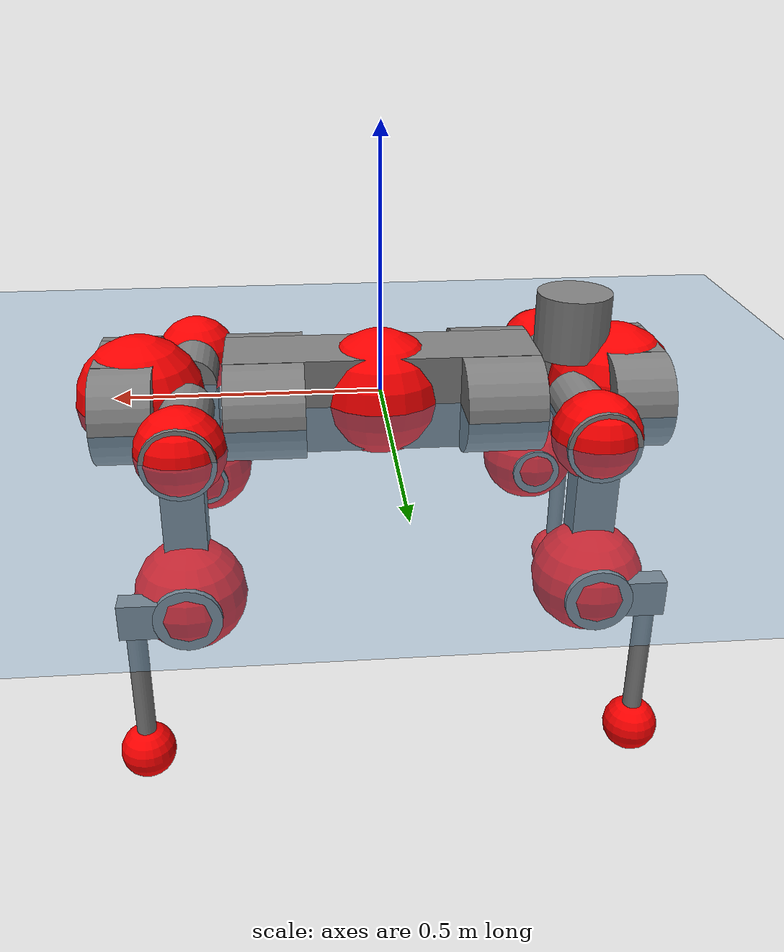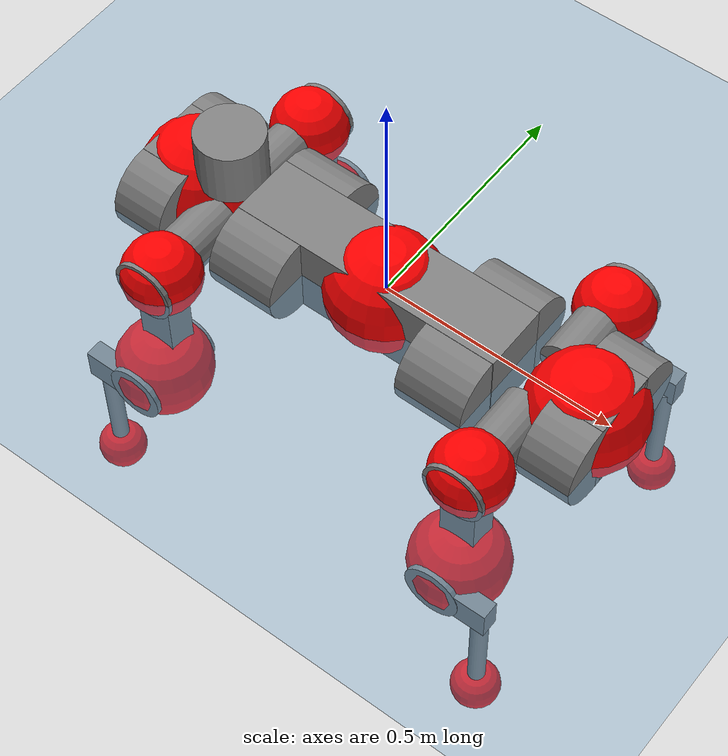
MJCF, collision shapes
<mujoco model="anymal_c">
  <compiler angle="radian" assetdir="assets" balanceinertia="true" inertiafromgeom="false"/>

  <option timestep="0.005" density="1.2" viscosity="2e-05"/>

  <size nkey="1"/>

  <visual>
    <quality shadowsize="8192"/>
    <map shadowclip="0.5"/>
  </visual>

  <default>
    <default class="/">
      <material specular="0" shininess="0.25"/>
      <geom contype="0" conaffinity="0" group="1" solref="-1000 -80"/>
      <site size="0.01 0.005 0.005" group="5"/>
      <general forcelimited="true" forcerange="-80 80" biastype="affine" gainprm="80" biasprm="0 -80 -2"/>
      <default class="anymal_c">
        <joint armature="0.01" damping="0.01" frictionloss="0.1"/>
        <default class="visual">
          <geom type="mesh" group="2"/>
          <default class="visual_zflip"/>
        </default>
        <default class="collision">
          <geom type="cylinder" group="3"/>
          <default class="foot">
            <geom size="0.03 0 0" type="sphere" condim="6" priority="1" friction="0.8 0.02 0.01" solimp="0.015 1 0.03"/>
          </default>
        </default>
      </default>
      <default class="reward_collision_sphere">
        <geom group="5" rgba="1 0 0 1"/>
      </default>
    </default>
  </default>

  <asset>
    <texture type="skybox" colorspace="auto" name="//unnamed_texture_0" builtin="gradient" rgb1="0.95 0.95 0.95" rgb2="0.95 0.95 0.95" width="100" height="600"/>
    <texture type="2d" colorspace="auto" name="texplane" builtin="checker" rgb1="0.345 0.575 0.748" rgb2="0.345 0.575 0.748" markrgb="1 1 1" width="512" height="512"/>
    <texture type="2d" colorspace="linear" name="base" file="base.png"/>
    <texture type="2d" colorspace="linear" name="top_shell" file="top_shell.png"/>
    <texture type="2d" colorspace="linear" name="bottom_shell" file="bottom_shell.png"/>
    <texture type="2d" colorspace="linear" name="remote" file="remote.png"/>
    <texture type="2d" colorspace="linear" name="hatch" file="hatch.png"/>
    <texture type="2d" colorspace="linear" name="handle" file="handle.png"/>
    <texture type="2d" colorspace="linear" name="face" file="face.png"/>
    <texture type="2d" colorspace="linear" name="battery" file="battery.png"/>
    <texture type="2d" colorspace="linear" name="lidar_cage" file="lidar_cage.png"/>
    <texture type="2d" colorspace="linear" name="depth_camera" file="depth_camera.png"/>
    <texture type="2d" colorspace="linear" name="wide_angle_camera" file="wide_angle_camera.png"/>
    <texture type="2d" colorspace="linear" name="lidar" file="lidar.png"/>
    <texture type="2d" colorspace="linear" name="drive" file="drive.png"/>
    <texture type="2d" colorspace="linear" name="hip_l" file="hip_l.png"/>
    <texture type="2d" colorspace="linear" name="shank_l" file="shank_l.png"/>
    <texture type="2d" colorspace="linear" name="foot" file="foot.png"/>
    <texture type="2d" colorspace="linear" name="thigh" file="thigh.png"/>
    <texture type="2d" colorspace="linear" name="shank_r" file="shank_r.png"/>
    <texture type="2d" colorspace="linear" name="hip_r" file="hip_r.png"/>
    <material name="MatPlane" class="/" texture="texplane" texuniform="true" texrepeat="2 2" specular="0.9" shininess="0.5"/>
    <material name="black_plastic" class="/" rgba="0.007 0.007 0.007 1"/>
    <material name="green" class="/" rgba="0.052 0.178 0.033 1"/>
    <material name="red" class="/" rgba="0.178 0.006 0.005 1"/>
    <material name="yellow" class="/" rgba="0.178 0.119 0.006 1"/>
    <material name="lwl" class="/" rgba="0.8 0.8 0.8 1"/>
    <material name="base" class="/" texture="base"/>
    <material name="top_shell" class="/" texture="top_shell"/>
    <material name="bottom_shell" class="/" texture="bottom_shell"/>
    <material name="hip_l" class="/" texture="hip_l"/>
    <material name="thigh" class="/" texture="thigh"/>
    <material name="shank_l" class="/" texture="shank_l"/>
    <material name="foot" class="/" texture="foot"/>
    <material name="hip_r" class="/" texture="hip_r"/>
    <material name="shank" class="/" texture="shank_r"/>
    <material name="hatch" class="/" texture="hatch"/>
    <material name="remote" class="/" texture="remote"/>
    <material name="handle" class="/" texture="handle"/>
    <material name="face" class="/" texture="face"/>
    <material name="depth_camera" class="/" texture="depth_camera"/>
    <material name="wide_angle_camera" class="/" texture="wide_angle_camera"/>
    <material name="battery" class="/" texture="battery"/>
    <material name="lidar_cage" class="/" texture="lidar_cage"/>
    <material name="lidar" class="/" texture="lidar"/>
    <material name="drive" class="/" texture="drive"/>
    <mesh name="base_0" class="/" file="base_0.obj"/>
    <mesh name="base_1" class="/" file="base_1.obj"/>
    <mesh name="base_2" class="/" file="base_2.obj"/>
    <mesh name="base_3" class="/" file="base_3.obj"/>
    <mesh name="base_4" class="/" file="base_4.obj"/>
    <mesh name="base_5" class="/" file="base_5.obj"/>
    <mesh name="top_shell" class="/" file="top_shell.obj"/>
    <mesh name="bottom_shell" class="/" file="bottom_shell.obj"/>
    <mesh name="remote" class="/" file="remote.obj"/>
    <mesh name="handle" class="/" file="handle.obj"/>
    <mesh name="face" class="/" file="face.obj"/>
    <mesh name="wide_angle_camera" class="/" file="wide_angle_camera.obj"/>
    <mesh name="depth_camera" class="/" file="depth_camera.obj"/>
    <mesh name="battery" class="/" file="battery.obj"/>
    <mesh name="lidar_cage" class="/" file="lidar_cage.obj"/>
    <mesh name="lidar" class="/" file="lidar.obj"/>
    <mesh name="drive" class="/" file="drive.obj"/>
    <mesh name="hip_l" class="/" file="hip_l.obj"/>
    <mesh name="thigh" class="/" file="thigh.obj"/>
    <mesh name="shank_l" class="/" file="shank_l.obj"/>
    <mesh name="foot" class="/" file="foot.obj"/>
    <mesh name="hip_r" class="/" file="hip_r.obj"/>
    <mesh name="hatch" class="/" file="hatch.obj"/>
    <mesh name="shank_r" class="/" file="shank_r.obj"/>
  </asset>

  <worldbody>
    <geom name="floor" class="/" size="100 100 0.125" type="plane" group="0" material="MatPlane"/>
    <light name="toplight_shadow" class="/" pos="0 0 5" dir="0.0990148 0.0990148 -0.990148" type="directional" ambient="0.04 0.04 0.04" diffuse="0.55 0.55 0.55" specular="0.12 0.12 0.12"/>
    <light name="toplight_fill" class="/" pos="0 0 5" dir="0.0990148 0.0990148 -0.990148" type="directional" castshadow="false" ambient="0.04 0.04 0.04" diffuse="0.3 0.3 0.3" specular="0.08 0.08 0.08"/>
    <body name="trunk" childclass="anymal_c" pos="2.35689e-05 -2.20723e-05 -0.00110552" quat="1 0.000135962 -0.000336746 -8.17042e-05">
      <inertial pos="0.00214897 -0.00167473 0.0475684" quat="0.500806 0.499118 0.500125 0.499949" mass="19.1507" diaginertia="0.610549 0.845011 0.160224"/>
      <joint name="//unnamed_joint_0" type="free" armature="0" damping="0" frictionloss="0"/>
      <geom name="//unnamed_geom_1" class="visual" material="green" mesh="base_0"/>
      <geom name="//unnamed_geom_2" class="visual" material="yellow" mesh="base_1"/>
      <geom name="//unnamed_geom_3" class="visual" material="red" mesh="base_2"/>
      <geom name="//unnamed_geom_4" class="visual" material="black_plastic" mesh="base_3"/>
      <geom name="//unnamed_geom_5" class="visual" material="lwl" mesh="base_4"/>
      <geom name="//unnamed_geom_6" class="visual" material="base" mesh="base_5"/>
      <geom name="trunk_1" class="collision" size="0.291212 0.0702925 0.090376" type="box"/>
      <geom name="trunk_2" class="collision" size="0.090376 0.0728029" pos="0.217124 0.0748113 0" quat="0.707107 0 0.707107 0"/>
      <geom name="trunk_3" class="collision" size="0.090376 0.0728029" pos="-0.217124 0.0748113 0" quat="0.707107 0 0.707107 0"/>
      <geom name="trunk_4" class="collision" size="0.090376 0.0728029" pos="0.217124 -0.0748113 0" quat="0.707107 0 0.707107 0"/>
      <geom name="trunk_5" class="collision" size="0.090376 0.0728029" pos="-0.217124 -0.0748113 0" quat="0.707107 0 0.707107 0"/>
      <geom name="//unnamed_geom_12" class="visual" material="top_shell" mesh="top_shell"/>
      <geom name="//unnamed_geom_13" class="visual" material="bottom_shell" mesh="bottom_shell"/>
      <geom name="//unnamed_geom_14" class="visual" material="remote" mesh="remote"/>
      <geom name="//unnamed_geom_15" class="visual" material="handle" mesh="handle"/>
      <geom name="//unnamed_geom_16" class="visual" pos="0.413784 0 0" quat="1 0 0 0" material="face" mesh="face"/>
      <geom name="trunk_6" class="collision" size="0.0552298 0.0702925 0.090376" pos="0.468689 0 0" type="box"/>
      <geom name="//unnamed_geom_18" class="collision" size="0.090376 0.0552298" pos="0.468689 0.0748113 0" quat="0.707107 0 0.707107 0"/>
      <geom name="//unnamed_geom_19" class="collision" size="0.090376 0.0552298" pos="0.468689 -0.0748113 0" quat="0.707107 0 0.707107 0"/>
      <geom name="//unnamed_geom_20" class="visual" pos="0.46085 0 -0.0272086" quat="0.965926 0 0.258819 0" material="depth_camera" mesh="depth_camera"/>
      <geom name="//unnamed_geom_21" class="visual" pos="0.512113 0 0.0141546" material="wide_angle_camera" mesh="wide_angle_camera"/>
      <geom name="//unnamed_geom_22" class="visual_zflip" pos="-0.413784 0 0" quat="0 0 0 1" material="face" mesh="face"/>
      <geom name="trunk_7" class="collision" size="0.0552298 0.0702925 0.090376" pos="-0.468689 0 0" quat="0 0 0 1" type="box"/>
      <geom name="//unnamed_geom_24" class="collision" size="0.090376 0.0552298" pos="-0.468689 -0.0748113 0" quat="0 -0.707107 0 0.707107"/>
      <geom name="//unnamed_geom_25" class="collision" size="0.090376 0.0552298" pos="-0.468689 0.0748113 0" quat="0 -0.707107 0 0.707107"/>
      <geom name="//unnamed_geom_26" class="visual" pos="-0.46085 0 -0.0272086" quat="0 -0.258819 0 0.965926" material="depth_camera" mesh="depth_camera"/>
      <geom name="//unnamed_geom_27" class="visual_zflip" pos="-0.512113 0 0.0141546" quat="0 0 0 1" material="wide_angle_camera" mesh="wide_angle_camera"/>
      <geom name="//unnamed_geom_28" class="visual" material="battery" mesh="battery"/>
      <geom name="//unnamed_geom_29" class="visual" pos="0 0.0826377 0.0278685" quat="0.683013 -0.183013 0.183013 0.683013" material="depth_camera" mesh="depth_camera"/>
      <geom name="//unnamed_geom_30" class="visual" pos="0 -0.0826377 0.0278685" quat="0.683013 0.183013 0.183013 -0.683013" material="depth_camera" mesh="depth_camera"/>
      <geom name="//unnamed_geom_31" class="visual" pos="-0.363371 0 0.0694964" quat="1 0 0 0" material="lidar_cage" mesh="lidar_cage"/>
      <geom name="trunk_8" class="collision" size="0.0702925 0.0602507" pos="-0.363371 0 0.126228"/>
      <geom name="//unnamed_geom_33" class="visual" pos="-0.363371 2.76823e-05 0.134454" quat="0.707107 0 0 -0.707107" material="lidar" mesh="lidar"/>
      <geom name="//unnamed_geom_34" class="visual" pos="0.299382 0.111104 2.12527e-09" quat="0.258819 0.965926 0 0" material="drive" mesh="drive"/>
      <geom name="//unnamed_geom_35" class="visual" pos="0.299382 -0.111104 -2.12527e-09" quat="0.258819 -0.965926 0 0" material="drive" mesh="drive"/>
      <geom name="//unnamed_geom_36" class="visual" pos="-0.299382 0.111104 -2.12527e-09" quat="0 0 0.965926 -0.258819" material="drive" mesh="drive"/>
      <geom name="//unnamed_geom_37" class="visual" pos="-0.299382 -0.111104 2.12527e-09" quat="0 0 -0.965926 -0.258819" material="drive" mesh="drive"/>
      <geom name="//unnamed_geom_38" class="visual" pos="0.1158 0 0.0690237" quat="1 0 0 0" material="hatch" mesh="hatch"/>
      <geom name="//unnamed_geom_39" class="reward_collision_sphere" size="0.120501"/>
      <geom name="//unnamed_geom_40" class="reward_collision_sphere" size="0.120501" pos="0.449222 0 0"/>
      <geom name="//unnamed_geom_41" class="reward_collision_sphere" size="0.120501" pos="-0.449222 0 0"/>
      <site name="imu" pos="0.261804 -0.00195379 0.0572134" size="0.0100418"/>
      <camera name="track" pos="0 -2.13747 0" quat="0.707107 0.707107 0 0" mode="trackcom"/>
      <camera name="ego_camera" pos="0.449222 0 -0.0378212" quat="-0.5 -0.5 0.5 0.5"/>
      <body name="LF_HIP" pos="0.300578 0.109732 0.000992419" quat="0.258493 0.966012 0.000408733 0.00122748">
        <inertial pos="0.0570154 -0.0152516 -0.0100541" quat="-0.123616 0.709738 -0.140354 0.679185" mass="2.64087" diaginertia="0.0055996 0.00644819 0.00246858"/>
        <joint name="LF_HAA" pos="0 0 0" axis="1 -0.000314582 -0.000487091" range="-0.771032 0.496984" armature="0.011028" damping="0.0198547" frictionloss="0.100778"/>
        <geom name="//unnamed_geom_42" class="visual" pos="0 0.00012502 -2.05344e-05" quat="0.258819 -0.965926 0 0" material="hip_l" mesh="hip_l"/>
        <geom name="//unnamed_geom_43" class="visual" pos="0.0597965 -0.0733401 -0.0414317" quat="0.183013 -0.683013 0.683013 0.183013" material="drive" mesh="drive"/>
        <geom name="//unnamed_geom_44" class="collision" size="0.0502089 0.0702925" pos="0.0597965 -0.0127818 -0.00652888" quat="-0.353553 -0.612372 0.612372 -0.353553"/>
        <body name="LF_THIGH" pos="0.0596755 -0.0797205 -0.0377102" quat="0.183087 -0.682995 0.683028 0.182949">
          <inertial pos="0.0316888 0.000729007 -0.234485" quat="0.992926 -0.00354241 -0.0816961 0.0860902" mass="3.23226" diaginertia="0.0297188 0.0423274 0.00328542"/>
          <joint name="LF_HFE" pos="0 0 0" axis="0.999937 0.0107097 0.00334539" range="-3.17204 3.19105" armature="0.0111861" damping="0.0100709" frictionloss="0.103399"/>
          <geom name="//unnamed_geom_45" class="visual" pos="-0.0014019 -2.20906e-06 0" quat="0.707107 0 0 -0.707107" material="thigh" mesh="thigh"/>
          <geom name="//unnamed_geom_46" class="collision" size="0.0652716 0.0401671" pos="0.0399309 0 0" quat="0.5 0.5 -0.5 -0.5"/>
          <geom name="//unnamed_geom_47" class="collision" size="0.0376567 0.0301253 0.141904" pos="0.0299482 0 -0.133617" quat="0.707107 0 0 -0.707107" type="box"/>
          <geom name="//unnamed_geom_48" class="visual" pos="0.100127 0 -0.269476" quat="1 0 0 0" material="drive" mesh="drive"/>
          <geom name="//unnamed_geom_49" class="collision" size="0.0502089 0.0702925" pos="0.0302476 0 -0.269476" quat="0.707107 0 0.707107 0"/>
          <geom name="//unnamed_geom_50" class="reward_collision_sphere" size="0.0803343" pos="0.0249568 0 0"/>
          <body name="LF_SHANK" pos="0.0979268 0.00123366 -0.268655" quat="1 -0.000626946 -5.57751e-05 -0.000155721">
            <inertial pos="0.00545423 -0.0656342 -0.0763188" quat="0.992948 -0.115729 -0.00119608 -0.0256943" mass="0.569882" diaginertia="0.0100524 0.0131493 0.000837204"/>
            <joint name="LF_KFE" pos="0 0 0" axis="0.999953 -0.00971266 4.52123e-05" range="-3.11912 3.1049" armature="0.00881435" damping="0.00759647" frictionloss="0.094952"/>
            <geom name="//unnamed_geom_51" class="visual" pos="-0.000457128 -0.00243743 0" quat="0.707107 0 0 -0.707107" material="shank_l" mesh="shank_l"/>
            <geom name="LF_kfe_act" class="collision" size="0.0602507 0.0200836" pos="0.0199654 0 0" quat="0.5 0.5 -0.5 -0.5"/>
            <geom name="//unnamed_geom_53" class="collision" size="0.0577392 0.033891 0.0190794" pos="0.0199654 -0.0614511 0" quat="0.5 0.5 -0.5 -0.5" type="box"/>
            <geom name="//unnamed_geom_54" class="visual" pos="0.0130276 -0.0947805 -0.319561" quat="0.382683 0 0 -0.92388" material="foot" mesh="foot"/>
            <geom name="LF_calf" class="collision" size="0.0175731 0.141842" pos="0.0130274 -0.0939951 -0.15978" quat="0.707107 0 0 -0.707107"/>
            <geom name="LF_foot" class="foot" size="0.0299553" pos="0.0130274 -0.0939951 -0.298286" quat="0.707107 0 0 -0.707107"/>
            <geom name="//unnamed_geom_57" class="reward_collision_sphere" size="0.100418" pos="-0.0499136 0 0"/>
            <geom name="//unnamed_geom_58" class="reward_collision_sphere" size="0.0502089" pos="0.0130274 -0.0939951 -0.298286"/>
            <site name="LF_foot" class="foot" pos="0.0130274 -0.0939951 -0.298286" quat="0.707107 0 0 -0.707107" size="0.0100418"/>
          </body>
        </body>
      </body>
      <body name="RF_HIP" pos="0.302496 -0.112906 0.00125955" quat="0.25877 -0.965939 -3.86969e-05 -1.65934e-05">
        <inertial pos="0.0572243 0.0183659 -0.00965358" quat="0.132833 0.680426 0.129156 0.709009" mass="2.93876" diaginertia="0.00587058 0.00672514 0.00248348"/>
        <joint name="RF_HAA" pos="0 0 0" axis="0.999982 0.00322406 -0.00501376" stiffness="0.00610352" range="-0.480805 0.744661" armature="0.0105051" damping="0.0225143" frictionloss="0.092129"/>
        <geom name="//unnamed_geom_59" class="visual" pos="0 -0.000125019 -2.05343e-05" quat="0.258819 0.965926 0 0" material="hip_r" mesh="hip_r"/>
        <geom name="//unnamed_geom_60" class="visual" pos="0.0597965 0.0733401 -0.0414317" quat="0.183013 0.683013 0.683013 -0.183013" material="drive" mesh="drive"/>
        <geom name="//unnamed_geom_61" class="collision" size="0.0502089 0.0702925" pos="0.0597965 0.0127818 -0.00652888" quat="-0.353553 0.612372 0.612372 0.353553"/>
        <body name="RF_THIGH" pos="0.0574241 0.0793553 -0.0406482" quat="0.183182 0.683704 0.681958 -0.18419">
          <inertial pos="0.0300355 -0.00133754 -0.231916" quat="0.992901 -0.0052004 -0.0815001 0.0864737" mass="2.91534" diaginertia="0.0294519 0.0389749 0.00313081"/>
          <joint name="RF_HFE" pos="0 0 0" axis="0.999969 -0.00772292 -0.00182412" stiffness="0.00495633" range="-3.19759 3.1644" armature="0.00958695" damping="0.00894361" frictionloss="0.0890527"/>
          <geom name="//unnamed_geom_62" class="visual" pos="-0.0014019 -2.20906e-06 0" quat="0.707107 0 0 -0.707107" material="thigh" mesh="thigh"/>
          <geom name="//unnamed_geom_63" class="collision" size="0.0652716 0.0401671" pos="0.0399309 0 0" quat="0.5 0.5 0.5 0.5"/>
          <geom name="//unnamed_geom_64" class="collision" size="0.0376567 0.0301253 0.141904" pos="0.0299482 0 -0.133617" quat="0.707107 0 0 0.707107" type="box"/>
          <geom name="//unnamed_geom_65" class="visual" pos="0.100127 0 -0.269476" quat="1 0 0 0" material="drive" mesh="drive"/>
          <geom name="//unnamed_geom_66" class="collision" size="0.0502089 0.0702925" pos="0.0302476 0 -0.269476" quat="0.707107 0 0.707107 0"/>
          <geom name="//unnamed_geom_67" class="reward_collision_sphere" size="0.0803343" pos="0.0249568 0 0"/>
          <body name="RF_SHANK" pos="0.0985281 0.00259803 -0.267253" quat="1 -7.73287e-05 0.000732065 0.00042058">
            <inertial pos="0.00295079 0.0632422 -0.0784889" quat="0.992865 0.113473 0.00554071 0.0362243" mass="0.616377" diaginertia="0.0102729 0.0129519 0.000850778"/>
            <joint name="RF_KFE" pos="0 0 0" axis="0.999887 0.0114852 0.00973916" range="-3.08377 3.13984" armature="0.0101107" damping="0.0162097" frictionloss="0.114744"/>
            <geom name="//unnamed_geom_68" class="visual" pos="-0.000457126 0.00243743 0" quat="0.707107 0 0 0.707107" material="shank" mesh="shank_r"/>
            <geom name="RF_kfe_act" class="collision" size="0.0602507 0.0200836" pos="0.0199654 0 0" quat="0.5 0.5 0.5 0.5"/>
            <geom name="//unnamed_geom_70" class="collision" size="0.0577392 0.033891 0.0190794" pos="0.0199654 0.0614511 0" quat="0.5 0.5 0.5 0.5" type="box"/>
            <geom name="//unnamed_geom_71" class="visual" pos="0.0130273 0.0947805 -0.319561" quat="0.382683 0 0 0.92388" material="foot" mesh="foot"/>
            <geom name="RF_calf" class="collision" size="0.0175731 0.141842" pos="0.0130274 0.0939951 -0.15978" quat="0.707107 0 0 0.707107"/>
            <geom name="RF_foot" class="foot" size="0.030129" pos="0.0130274 0.0939951 -0.298286" quat="0.707107 0 0 0.707107"/>
            <geom name="//unnamed_geom_74" class="reward_collision_sphere" size="0.100418" pos="-0.0499136 0 0"/>
            <geom name="//unnamed_geom_75" class="reward_collision_sphere" size="0.0502089" pos="0.0130274 0.0939951 -0.298286"/>
            <site name="RF_foot" class="foot" pos="0.0130274 0.0939951 -0.298286" quat="0.707107 0 0 0.707107" size="0.0100418"/>
          </body>
        </body>
      </body>
      <body name="LH_HIP" pos="-0.300692 0.111981 0.00127008" quat="-0.000150785 -5.60538e-05 0.96598 -0.258618">
        <inertial pos="0.054283 0.0165021 -0.00630274" quat="0.129238 0.683201 0.142198 0.704495" mass="2.93114" diaginertia="0.00601512 0.00700648 0.00241136"/>
        <joint name="LH_HAA" pos="0 0 0" axis="0.999989 0.00310267 0.00358019" range="-0.449941 0.673535" armature="0.01023" damping="0" frictionloss="0.112155"/>
        <geom name="//unnamed_geom_76" class="visual" pos="0 -0.000125019 -2.05343e-05" quat="-0.258819 -0.965926 0 0" material="hip_r" mesh="hip_r"/>
        <geom name="//unnamed_geom_77" class="visual" pos="0.0597965 0.0733401 -0.0414317" quat="0.183013 0.683013 0.683013 -0.183013" material="drive" mesh="drive"/>
        <geom name="//unnamed_geom_78" class="collision" size="0.0502089 0.0702925" pos="0.0597965 0.0127818 -0.00652888" quat="-0.353553 0.612372 0.612372 0.353553"/>
        <body name="LH_THIGH" pos="0.0596371 0.0776956 -0.0409427" quat="0.183468 0.682434 0.683666 -0.182276">
          <inertial pos="0.0281619 -0.0012016 -0.231907" quat="0.991796 -0.0157976 -0.0822488 0.0965755" mass="3.04798" diaginertia="0.0288159 0.0398576 0.00320209"/>
          <joint name="LH_HFE" pos="0 0 0" axis="0.999999 0.000764786 0.00127616" stiffness="0.00926598" range="-3.15158 3.13132" armature="0.010124" damping="0.000743986" frictionloss="0.102676"/>
          <geom name="//unnamed_geom_79" class="visual" pos="-0.0014019 -2.20906e-06 0" quat="0.707107 0 0 -0.707107" material="thigh" mesh="thigh"/>
          <geom name="//unnamed_geom_80" class="collision" size="0.0652716 0.0401671" pos="0.0399309 0 0" quat="0.5 0.5 -0.5 -0.5"/>
          <geom name="//unnamed_geom_81" class="collision" size="0.0376567 0.0301253 0.141904" pos="0.0299482 0 -0.133617" quat="0.707107 0 0 -0.707107" type="box"/>
          <geom name="//unnamed_geom_82" class="visual" pos="0.100127 0 -0.269476" quat="1 0 0 0" material="drive" mesh="drive"/>
          <geom name="//unnamed_geom_83" class="collision" size="0.0502089 0.0702925" pos="0.0302476 0 -0.269476" quat="0.707107 0 0.707107 0"/>
          <geom name="//unnamed_geom_84" class="reward_collision_sphere" size="0.0803343" pos="0.0249568 0 0"/>
          <body name="LH_SHANK" pos="0.100673 -0.00185383 -0.269282" quat="1 -4.04537e-07 1.09996e-06 6.29198e-07">
            <inertial pos="0.00599427 0.0626633 -0.0776112" quat="0.993049 0.114993 -0.00088636 0.0251042" mass="0.575551" diaginertia="0.00933112 0.0121674 0.000776344"/>
            <joint name="LH_KFE" pos="0 0 0" axis="0.999979 0.00641253 0.00121137" range="-3.15058 3.20855" armature="0.0101122" damping="0.0100949" frictionloss="0.112729"/>
            <geom name="//unnamed_geom_85" class="visual" pos="-0.000457126 0.00243743 0" quat="-0.707107 0 0 -0.707107" material="shank" mesh="shank_r"/>
            <geom name="LH_kfe_act" class="collision" size="0.0602507 0.0200836" pos="0.0199654 0 0" quat="0.5 0.5 -0.5 -0.5"/>
            <geom name="//unnamed_geom_87" class="collision" size="0.0577392 0.033891 0.0190794" pos="0.0199654 0.0614511 0" quat="0.5 0.5 -0.5 -0.5" type="box"/>
            <geom name="//unnamed_geom_88" class="visual" pos="0.0130273 0.0947805 -0.319561" quat="-0.382683 0 0 -0.92388" material="foot" mesh="foot"/>
            <geom name="LH_calf" class="collision" size="0.0175731 0.141842" pos="0.0130274 0.0939951 -0.15978" quat="0.707107 0 0 -0.707107"/>
            <geom name="LH_foot" class="foot" size="0.0326098" pos="0.0130274 0.0939951 -0.298286" quat="0.707107 0 0 -0.707107"/>
            <geom name="//unnamed_geom_91" class="reward_collision_sphere" size="0.100418" pos="-0.0499136 0 0"/>
            <geom name="//unnamed_geom_92" class="reward_collision_sphere" size="0.0502089" pos="0.0130274 0.0939951 -0.298286"/>
            <site name="LH_foot" class="foot" pos="0.0130274 0.0939951 -0.298286" quat="0.707107 0 0 -0.707107" size="0.0100418"/>
          </body>
        </body>
      </body>
      <body name="RH_HIP" pos="-0.29841 -0.110932 0.00169689" quat="-0.000105563 -0.000107667 -0.965943 -0.258754">
        <inertial pos="0.0587295 -0.013982 -0.0105786" quat="-0.133406 0.700272 -0.137928 0.687602" mass="2.67516" diaginertia="0.00582009 0.00652252 0.00242503"/>
        <joint name="RH_HAA" pos="0 0 0" axis="0.999889 0.0107215 0.0103644" range="-0.714903 0.541647" armature="0.0103648" damping="0.00383739" frictionloss="0.109163"/>
        <geom name="//unnamed_geom_93" class="visual" pos="0 0.00012502 -2.05344e-05" quat="-0.258819 0.965926 0 0" material="hip_l" mesh="hip_l"/>
        <geom name="//unnamed_geom_94" class="visual" pos="0.0597965 -0.0733401 -0.0414317" quat="-0.183013 0.683013 -0.683013 -0.183013" material="drive" mesh="drive"/>
        <geom name="//unnamed_geom_95" class="collision" size="0.0502089 0.0702925" pos="0.0597965 -0.0127818 -0.00652888" quat="0.353553 0.612372 -0.612372 0.353553"/>
        <body name="RH_THIGH" pos="0.0583743 -0.0791248 -0.0374604" quat="-0.183006 0.683021 -0.683017 -0.182972">
          <inertial pos="0.0307741 -0.00301923 -0.230139" quat="0.993045 -0.00701377 -0.0815171 0.0846561" mass="3.22672" diaginertia="0.0312189 0.0437242 0.00326095"/>
          <joint name="RH_HFE" pos="0 0 0" axis="0.999969 0.00371723 0.00694248" range="-3.0877 3.16696" armature="0.00847461" damping="0.00560776" frictionloss="0.11369"/>
          <geom name="//unnamed_geom_96" class="visual" pos="-0.0014019 -2.20906e-06 0" quat="0.707107 0 0 -0.707107" material="thigh" mesh="thigh"/>
          <geom name="//unnamed_geom_97" class="collision" size="0.0652716 0.0401671" pos="0.0399309 0 0" quat="0.5 0.5 0.5 0.5"/>
          <geom name="//unnamed_geom_98" class="collision" size="0.0376567 0.0301253 0.141904" pos="0.0299482 0 -0.133617" quat="0.707107 0 0 0.707107" type="box"/>
          <geom name="//unnamed_geom_99" class="visual" pos="0.100127 0 -0.269476" quat="1 0 0 0" material="drive" mesh="drive"/>
          <geom name="//unnamed_geom_100" class="collision" size="0.0502089 0.0702925" pos="0.0302476 0 -0.269476" quat="0.707107 0 0.707107 0"/>
          <geom name="//unnamed_geom_101" class="reward_collision_sphere" size="0.0803343" pos="0.0249568 0 0"/>
          <body name="RH_SHANK" pos="0.102179 -0.000553409 -0.266335" quat="1 0.000221244 -8.07234e-05 0.000378994">
            <inertial pos="0.00791826 -0.0645154 -0.0763067" quat="0.992659 -0.116727 -0.00969274 -0.0301391" mass="0.585456" diaginertia="0.0100066 0.0120882 0.000789126"/>
            <joint name="RH_KFE" pos="0 0 0" axis="0.999986 -0.00335597 0.00414368" range="-3.13128 3.12333" armature="0.0102334" damping="0.00701598" frictionloss="0.107397"/>
            <geom name="//unnamed_geom_102" class="visual" pos="-0.000457128 -0.00243743 0" quat="0.707107 0 0 -0.707107" material="shank_l" mesh="shank_l"/>
            <geom name="RH_kfe_act" class="collision" size="0.0602507 0.0200836" pos="0.0199654 0 0" quat="0.5 0.5 0.5 0.5"/>
            <geom name="//unnamed_geom_104" class="collision" size="0.0577392 0.033891 0.0190794" pos="0.0199654 -0.0614511 0" quat="0.5 0.5 0.5 0.5" type="box"/>
            <geom name="//unnamed_geom_105" class="visual" pos="0.0130276 -0.0947805 -0.319561" quat="0.382683 0 0 -0.92388" material="foot" mesh="foot"/>
            <geom name="RH_calf" class="collision" size="0.0175731 0.141842" pos="0.0130274 -0.0939951 -0.15978" quat="0.707107 0 0 0.707107"/>
            <geom name="RH_foot" class="foot" size="0.0335097" pos="0.0130274 -0.0939951 -0.298286" quat="0.707107 0 0 0.707107"/>
            <geom name="//unnamed_geom_108" class="reward_collision_sphere" size="0.100418" pos="-0.0499136 0 0"/>
            <geom name="//unnamed_geom_109" class="reward_collision_sphere" size="0.0502089" pos="0.0130274 -0.0939951 -0.298286"/>
            <site name="RH_foot" class="foot" pos="0.0130274 -0.0939951 -0.298286" quat="0.707107 0 0 0.707107" size="0.0100418"/>
          </body>
        </body>
      </body>
    </body>
  </worldbody>

  <contact>
    <pair class="/" geom1="floor" geom2="LF_foot" name="//unnamed_contact_0"/>
    <pair class="/" geom1="floor" geom2="RF_foot" name="//unnamed_contact_1"/>
    <pair class="/" geom1="floor" geom2="LH_foot" name="//unnamed_contact_2"/>
    <pair class="/" geom1="floor" geom2="RH_foot" name="//unnamed_contact_3"/>
  </contact>

  <actuator>
    <general name="LF_HAA" class="/" joint="LF_HAA" forcerange="-74.2583 74.2583" gainprm="77.9413" biasprm="0 -77.9413 -2.12843"/>
    <general name="LF_HFE" class="/" joint="LF_HFE" forcerange="-88.6299 88.6299" gainprm="77.9413" biasprm="0 -77.9413 -2.12843"/>
    <general name="LF_KFE" class="/" joint="LF_KFE" forcerange="-87.4144 87.4144" gainprm="77.9413" biasprm="0 -77.9413 -2.12843"/>
    <general name="RF_HAA" class="/" joint="RF_HAA" forcerange="-73.6019 73.6019" gainprm="77.9413" biasprm="0 -77.9413 -2.12843"/>
    <general name="RF_HFE" class="/" joint="RF_HFE" forcerange="-90.0845 90.0845" gainprm="77.9413" biasprm="0 -77.9413 -2.12843"/>
    <general name="RF_KFE" class="/" joint="RF_KFE" forcerange="-72.9162 72.9162" gainprm="77.9413" biasprm="0 -77.9413 -2.12843"/>
    <general name="LH_HAA" class="/" joint="LH_HAA" forcerange="-85.0207 85.0207" gainprm="77.9413" biasprm="0 -77.9413 -2.12843"/>
    <general name="LH_HFE" class="/" joint="LH_HFE" forcerange="-80.563 80.563" gainprm="77.9413" biasprm="0 -77.9413 -2.12843"/>
    <general name="LH_KFE" class="/" joint="LH_KFE" forcerange="-73.7711 73.7711" gainprm="77.9413" biasprm="0 -77.9413 -2.12843"/>
    <general name="RH_HAA" class="/" joint="RH_HAA" forcerange="-88.0356 88.0356" gainprm="77.9413" biasprm="0 -77.9413 -2.12843"/>
    <general name="RH_HFE" class="/" joint="RH_HFE" forcerange="-76.0066 76.0066" gainprm="77.9413" biasprm="0 -77.9413 -2.12843"/>
    <general name="RH_KFE" class="/" joint="RH_KFE" forcerange="-74.3661 74.3661" gainprm="77.9413" biasprm="0 -77.9413 -2.12843"/>
  </actuator>

  <sensor>
    <gyro site="imu" name="imu_angular_velocity"/>
    <velocimeter site="imu" name="imu_linear_velocity"/>
    <framelinvel objtype="site" objname="LF_foot" name="LF_foot_global_linear_velocity"/>
    <framelinvel objtype="site" objname="RF_foot" name="RF_foot_global_linear_velocity"/>
    <framelinvel objtype="site" objname="LH_foot" name="LH_foot_global_linear_velocity"/>
    <framelinvel objtype="site" objname="RH_foot" name="RH_foot_global_linear_velocity"/>
  </sensor>

  <keyframe>
    <key name="home" qpos="0 0 0.55 1 0 0 0 0 0.4 -0.8 0 -0.4 0.8 0 -0.4 0.8 0 0.4 -0.8"/>
  </keyframe>
</mujoco>
